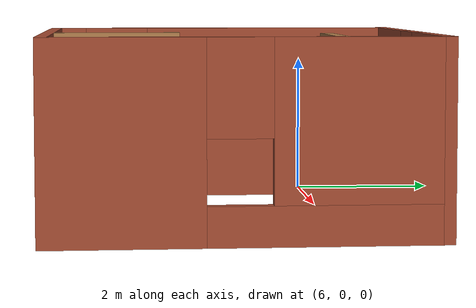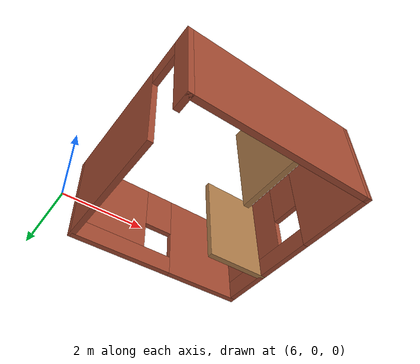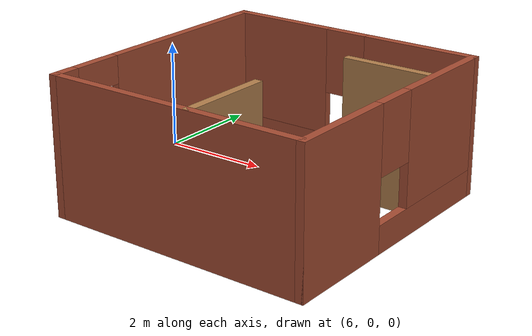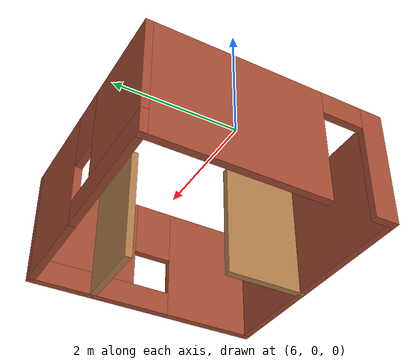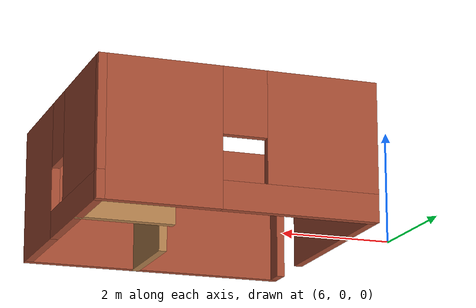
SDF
<?xml version='1.0'?>
<sdf version='1.7'>
  <model name='map2'>
    <pose>5.8575 -1.245 0 0 -0 0</pose>
    <link name='Wall_10'>
      <collision name='Wall_10_Collision'>
        <geometry>
          <box>
            <size>5 0.15 2.5</size>
          </box>
        </geometry>
        <pose>0 0 1.25 0 -0 0</pose>
      </collision>
      <visual name='Wall_10_Visual'>
        <pose>0 0 1.25 0 -0 0</pose>
        <geometry>
          <box>
            <size>5 0.15 2.5</size>
          </box>
        </geometry>
        <material>
          <script>
            <uri>file://media/materials/scripts/gazebo.material</uri>
            <name>Gazebo/Bricks</name>
          </script>
          <ambient>1 1 1 1</ambient>
        </material>
        <meta>
          <layer>0</layer>
        </meta>
      </visual>
      <pose>3.3575 -2.425 0 0 -0 0</pose>
    </link>
    <link name='Wall_13'>
      <pose>5.7825 0 0 0 -0 1.5708</pose>
      <visual name='Wall_13_Visual_0'>
        <pose>-1.49491 0 1.25 0 -0 0</pose>
        <geometry>
          <box>
            <size>2.01018 0.15 2.5</size>
          </box>
        </geometry>
        <material>
          <script>
            <uri>file://media/materials/scripts/gazebo.material</uri>
            <name>Gazebo/Bricks</name>
          </script>
          <ambient>1 1 1 1</ambient>
        </material>
        <meta>
          <layer>0</layer>
        </meta>
      </visual>
      <collision name='Wall_13_Collision_0'>
        <geometry>
          <box>
            <size>2.01018 0.15 2.5</size>
          </box>
        </geometry>
        <pose>-1.49491 0 1.25 0 -0 0</pose>
      </collision>
      <visual name='Wall_13_Visual_1'>
        <pose>1.00509 0 0.25 0 -0 0</pose>
        <geometry>
          <box>
            <size>2.98982 0.15 0.5</size>
          </box>
        </geometry>
        <material>
          <script>
            <uri>file://media/materials/scripts/gazebo.material</uri>
            <name>Gazebo/Bricks</name>
          </script>
          <ambient>1 1 1 1</ambient>
        </material>
        <meta>
          <layer>0</layer>
        </meta>
      </visual>
      <collision name='Wall_13_Collision_1'>
        <geometry>
          <box>
            <size>2.98982 0.15 0.5</size>
          </box>
        </geometry>
        <pose>1.00509 0 0.25 0 -0 0</pose>
      </collision>
      <visual name='Wall_13_Visual_2'>
        <pose>1.40509 0 1.5 0 -0 0</pose>
        <geometry>
          <box>
            <size>2.18982 0.15 2</size>
          </box>
        </geometry>
        <material>
          <script>
            <uri>file://media/materials/scripts/gazebo.material</uri>
            <name>Gazebo/Bricks</name>
          </script>
          <ambient>1 1 1 1</ambient>
        </material>
        <meta>
          <layer>0</layer>
        </meta>
      </visual>
      <collision name='Wall_13_Collision_2'>
        <geometry>
          <box>
            <size>2.18982 0.15 2</size>
          </box>
        </geometry>
        <pose>1.40509 0 1.5 0 -0 0</pose>
      </collision>
      <visual name='Wall_13_Visual_3'>
        <pose>-0.089818 0 1.9 0 -0 0</pose>
        <geometry>
          <box>
            <size>0.8 0.15 1.2</size>
          </box>
        </geometry>
        <material>
          <script>
            <uri>file://media/materials/scripts/gazebo.material</uri>
            <name>Gazebo/Bricks</name>
          </script>
          <ambient>1 1 1 1</ambient>
        </material>
        <meta>
          <layer>0</layer>
        </meta>
      </visual>
      <collision name='Wall_13_Collision_3'>
        <geometry>
          <box>
            <size>0.8 0.15 1.2</size>
          </box>
        </geometry>
        <pose>-0.089818 0 1.9 0 -0 0</pose>
      </collision>
    </link>
    <link name='Wall_14'>
      <pose>3.3575 2.425 0 0 -0 3.14159</pose>
      <visual name='Wall_14_Visual_0'>
        <pose>-1.41196 0 1.25 0 -0 0</pose>
        <geometry>
          <box>
            <size>2.17608 0.15 2.5</size>
          </box>
        </geometry>
        <material>
          <script>
            <uri>file://media/materials/scripts/gazebo.material</uri>
            <name>Gazebo/Bricks</name>
          </script>
          <ambient>1 1 1 1</ambient>
        </material>
        <meta>
          <layer>0</layer>
        </meta>
      </visual>
      <collision name='Wall_14_Collision_0'>
        <geometry>
          <box>
            <size>2.17608 0.15 2.5</size>
          </box>
        </geometry>
        <pose>-1.41196 0 1.25 0 -0 0</pose>
      </collision>
      <visual name='Wall_14_Visual_1'>
        <pose>1.08804 0 0.25 0 -0 0</pose>
        <geometry>
          <box>
            <size>2.82392 0.15 0.5</size>
          </box>
        </geometry>
        <material>
          <script>
            <uri>file://media/materials/scripts/gazebo.material</uri>
            <name>Gazebo/Bricks</name>
          </script>
          <ambient>1 1 1 1</ambient>
        </material>
        <meta>
          <layer>0</layer>
        </meta>
      </visual>
      <collision name='Wall_14_Collision_1'>
        <geometry>
          <box>
            <size>2.82392 0.15 0.5</size>
          </box>
        </geometry>
        <pose>1.08804 0 0.25 0 -0 0</pose>
      </collision>
      <visual name='Wall_14_Visual_2'>
        <pose>1.48804 0 1.5 0 -0 0</pose>
        <geometry>
          <box>
            <size>2.02392 0.15 2</size>
          </box>
        </geometry>
        <material>
          <script>
            <uri>file://media/materials/scripts/gazebo.material</uri>
            <name>Gazebo/Bricks</name>
          </script>
          <ambient>1 1 1 1</ambient>
        </material>
        <meta>
          <layer>0</layer>
        </meta>
      </visual>
      <collision name='Wall_14_Collision_2'>
        <geometry>
          <box>
            <size>2.02392 0.15 2</size>
          </box>
        </geometry>
        <pose>1.48804 0 1.5 0 -0 0</pose>
      </collision>
      <visual name='Wall_14_Visual_3'>
        <pose>0.07608 0 1.9 0 -0 0</pose>
        <geometry>
          <box>
            <size>0.8 0.15 1.2</size>
          </box>
        </geometry>
        <material>
          <script>
            <uri>file://media/materials/scripts/gazebo.material</uri>
            <name>Gazebo/Bricks</name>
          </script>
          <ambient>1 1 1 1</ambient>
        </material>
        <meta>
          <layer>0</layer>
        </meta>
      </visual>
      <collision name='Wall_14_Collision_3'>
        <geometry>
          <box>
            <size>0.8 0.15 1.2</size>
          </box>
        </geometry>
        <pose>0.07608 0 1.9 0 -0 0</pose>
      </collision>
    </link>
    <link name='Wall_15'>
      <pose>0.932499 0 0 0 -0 -1.5708</pose>
      <visual name='Wall_15_Visual_0'>
        <pose>-0.700071 0 1.25 0 -0 0</pose>
        <geometry>
          <box>
            <size>3.59986 0.15 2.5</size>
          </box>
        </geometry>
        <material>
          <script>
            <uri>file://media/materials/scripts/gazebo.material</uri>
            <name>Gazebo/Bricks</name>
          </script>
          <ambient>1 1 1 1</ambient>
        </material>
        <meta>
          <layer>0</layer>
        </meta>
      </visual>
      <collision name='Wall_15_Collision_0'>
        <geometry>
          <box>
            <size>3.59986 0.15 2.5</size>
          </box>
        </geometry>
        <pose>-0.700071 0 1.25 0 -0 0</pose>
      </collision>
      <visual name='Wall_15_Visual_1'>
        <pose>2.24993 0 1.25 0 -0 0</pose>
        <geometry>
          <box>
            <size>0.500142 0.15 2.5</size>
          </box>
        </geometry>
        <material>
          <script>
            <uri>file://media/materials/scripts/gazebo.material</uri>
            <name>Gazebo/Bricks</name>
          </script>
          <ambient>1 1 1 1</ambient>
        </material>
        <meta>
          <layer>0</layer>
        </meta>
      </visual>
      <collision name='Wall_15_Collision_1'>
        <geometry>
          <box>
            <size>0.500142 0.15 2.5</size>
          </box>
        </geometry>
        <pose>2.24993 0 1.25 0 -0 0</pose>
      </collision>
      <visual name='Wall_15_Visual_2'>
        <pose>1.54986 0 2.25 0 -0 0</pose>
        <geometry>
          <box>
            <size>0.9 0.15 0.5</size>
          </box>
        </geometry>
        <material>
          <script>
            <uri>file://media/materials/scripts/gazebo.material</uri>
            <name>Gazebo/Bricks</name>
          </script>
          <ambient>1 1 1 1</ambient>
        </material>
        <meta>
          <layer>0</layer>
        </meta>
      </visual>
      <collision name='Wall_15_Collision_2'>
        <geometry>
          <box>
            <size>0.9 0.15 0.5</size>
          </box>
        </geometry>
        <pose>1.54986 0 2.25 0 -0 0</pose>
      </collision>
    </link>
    <link name='Wall_17'>
      <collision name='Wall_17_Collision'>
        <geometry>
          <box>
            <size>1.75 0.15 2.5</size>
          </box>
        </geometry>
        <pose>0 0 1.25 0 -0 0</pose>
      </collision>
      <visual name='Wall_17_Visual'>
        <pose>0 0 1.25 0 -0 0</pose>
        <geometry>
          <box>
            <size>1.75 0.15 2.5</size>
          </box>
        </geometry>
        <material>
          <script>
            <uri>file://media/materials/scripts/gazebo.material</uri>
            <name>Gazebo/Wood</name>
          </script>
          <ambient>1 1 1 1</ambient>
        </material>
        <meta>
          <layer>0</layer>
        </meta>
      </visual>
      <pose>4.96787 1.14949 0 0 -0 3.14159</pose>
    </link>
    <link name='Wall_19'>
      <collision name='Wall_19_Collision'>
        <geometry>
          <box>
            <size>1.75 0.15 2.5</size>
          </box>
        </geometry>
        <pose>0 0 1.25 0 -0 0</pose>
      </collision>
      <visual name='Wall_19_Visual'>
        <pose>0 0 1.25 0 -0 0</pose>
        <geometry>
          <box>
            <size>1.75 0.15 2.5</size>
          </box>
        </geometry>
        <material>
          <script>
            <uri>file://media/materials/scripts/gazebo.material</uri>
            <name>Gazebo/Wood</name>
          </script>
          <ambient>1 1 1 1</ambient>
        </material>
        <meta>
          <layer>0</layer>
        </meta>
      </visual>
      <pose>3.70404 -1.601 0 0 -0 1.5708</pose>
    </link>
    <static>1</static>
  </model>
</sdf>
